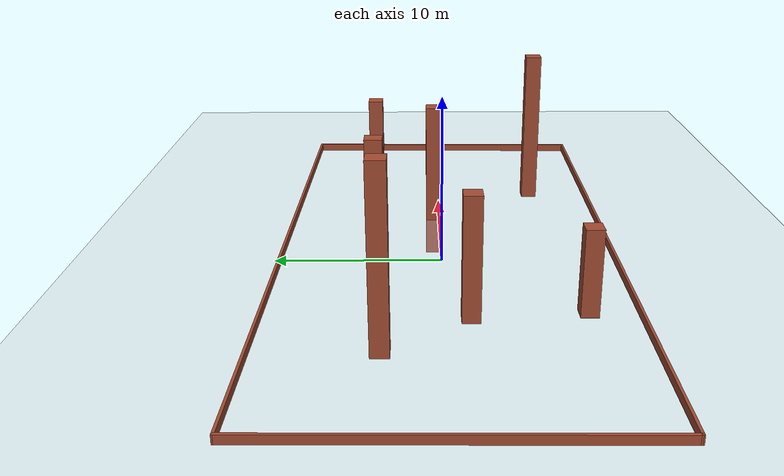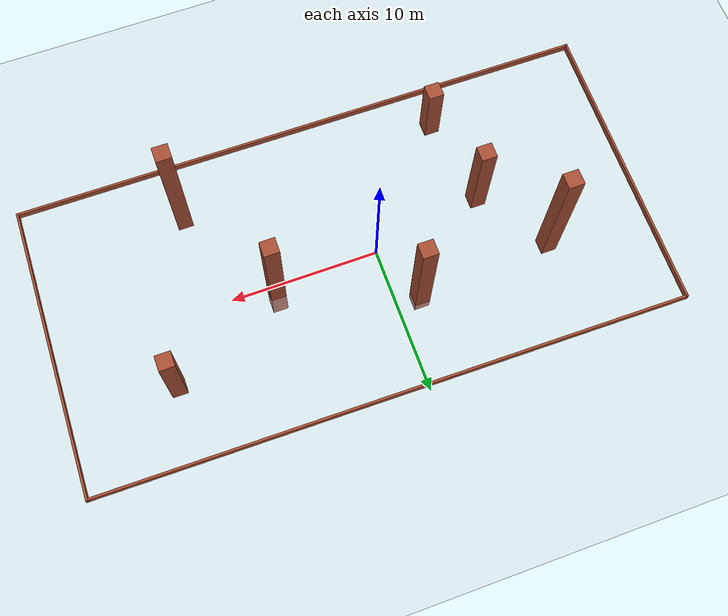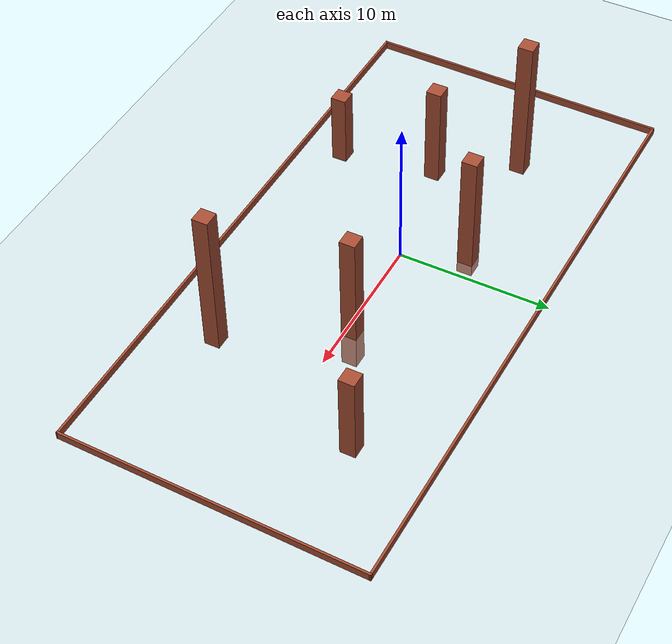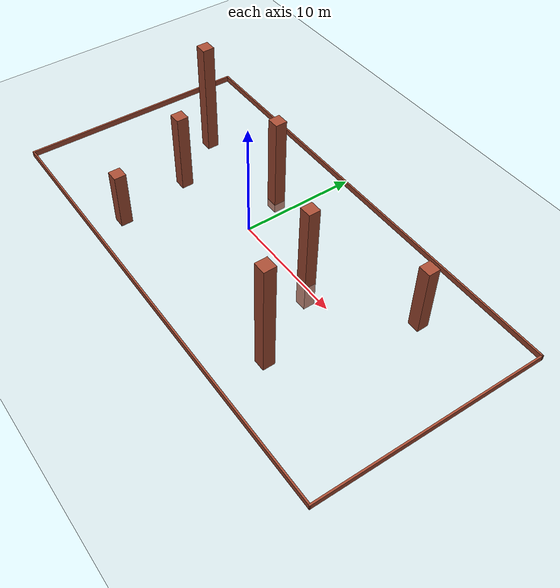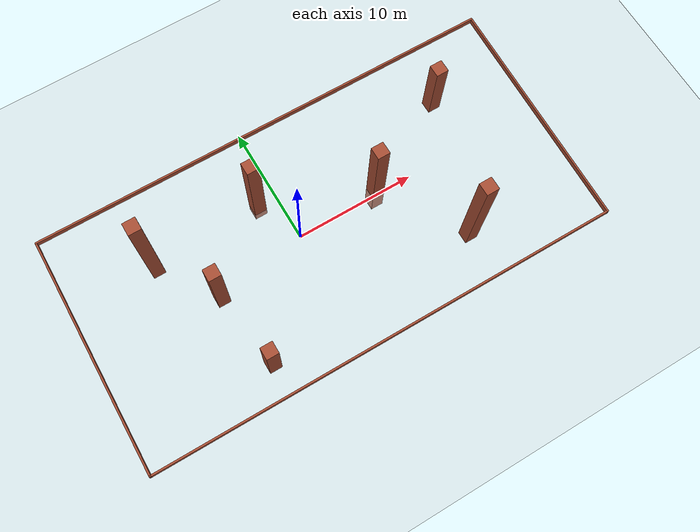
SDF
<sdf version="1.7">
 <world name="default">
  <light name="sun" type="directional">
   <pose>0 0 10 0 -0 0</pose>
   <diffuse>0.8 0.8 0.8 1</diffuse>
   <specular>0.1 0.1 0.1 1</specular>
   <attenuation>
    <range>1000</range>
    <constant>0.9</constant>
    <linear>0.01</linear>
    <quadratic>0.001</quadratic>
   </attenuation>
   <direction>-0.5 0.5 -1</direction>
   <spot><inner_angle>0</inner_angle><outer_angle>0</outer_angle><falloff>0</falloff></spot>
  </light>
  <model name="ground_plane">
   <static>1</static>
   <link name="link">
    <collision name="collision">
     <geometry><plane><normal>0 0 1</normal><size>100 100</size></plane></geometry>
     <surface><friction><ode><mu>100</mu><mu2>50</mu2></ode></friction></surface>
    </collision>
    <visual name="visual">
     <cast_shadows>0</cast_shadows>
     <geometry><plane><normal>0 0 1</normal><size>100 100</size></plane></geometry>
     <material>
      <script><uri>file://media/materials/scripts/gazebo.material</uri><name>Gazebo/Grey</name></script>
     </material>
    </visual>
   </link>
  </model>
  <gravity>0 0 -9.8</gravity>
  <magnetic_field>6e-06 2.3e-05 -4.2e-05</magnetic_field>
  <atmosphere type="adiabatic"/>
  <physics name="default_physics" default="0" type="ode">
   <max_step_size>0.001</max_step_size>
   <real_time_factor>1</real_time_factor>
   <real_time_update_rate>1000</real_time_update_rate>
  </physics>
  <scene><ambient>0.4 0.4 0.4 1</ambient><background>0.7 0.7 0.7 1</background><shadows>1</shadows></scene>
  <spherical_coordinates>
   <surface_model>EARTH_WGS84</surface_model>
   <latitude_deg>0</latitude_deg>
   <longitude_deg>0</longitude_deg>
   <elevation>0</elevation>
   <heading_deg>0</heading_deg>
  </spherical_coordinates>
  <audio><device>default</device></audio>
  <model name="Untitled">
   <pose>-10.5221 3.76724 0 0 -0 0</pose>
   <link name="Wall_0">
    <collision name="Wall_0_Collision">
     <geometry><box><size>1.01 1 9</size></box></geometry>
     <pose>0 0 5 0 -0 0</pose>
    </collision>
    <visual name="Wall_0_Visual">
     <pose>0 0 5 0 -0 0</pose>
     <geometry><box><size>1.01 1 10</size></box></geometry>
     <material>
      <script><uri>file://media/materials/scripts/gazebo.material</uri><name>Gazebo/Bricks</name></script>
      <ambient>1 1 1 1</ambient>
     </material>
     <meta><layer>0</layer></meta>
    </visual>
    <pose>-0.275 -0.51 0 0 -0 0</pose>
   </link>
   <static>1</static>
  </model>
  <model name="Untitled_clone">
   <pose>-7.3242 -0.82688 -1.38301 0 -0 0</pose>
   <link name="Wall_0">
    <collision name="Wall_0_Collision">
     <geometry><box><size>1.01 1 10</size></box></geometry>
     <pose>0 0 5 0 -0 0</pose>
    </collision>
    <visual name="Wall_0_Visual">
     <pose>0 0 5 0 -0 0</pose>
     <geometry><box><size>1.01 1 7</size></box></geometry>
     <material>
      <script><uri>file://media/materials/scripts/gazebo.material</uri><name>Gazebo/Bricks</name></script>
      <ambient>1 1 1 1</ambient>
     </material>
     <meta><layer>0</layer></meta>
    </visual>
    <pose>-0.275 -0.51 0 0 -0 0</pose>
   </link>
   <static>1</static>
  </model>
  <model name="Untitled_clone_1">
   <pose>-6.4547 -7.10206 -2.57276 0 -0 0</pose>
   <link name="Wall_0">
    <collision name="Wall_0_Collision">
     <geometry><box><size>1.01 1 10</size></box></geometry>
     <pose>0 0 5 0 -0 0</pose>
    </collision>
    <visual name="Wall_0_Visual">
     <pose>0 0 5 0 -0 0</pose>
     <geometry><box><size>1.01 1 5</size></box></geometry>
     <material>
      <script><uri>file://media/materials/scripts/gazebo.material</uri><name>Gazebo/Bricks</name></script>
      <ambient>1 1 1 1</ambient>
     </material>
     <meta><layer>0</layer></meta>
    </visual>
    <pose>-0.275 -0.51 0 0 -0 0</pose>
   </link>
   <static>1</static>
  </model>
  <model name="Untitled_clone_2">
   <pose>15.187 4.99069 -1.94891 0 -0 0</pose>
   <link name="Wall_0">
    <collision name="Wall_0_Collision">
     <geometry><box><size>1.01 1 8</size></box></geometry>
     <pose>0 0 5 0 -0 0</pose>
    </collision>
    <visual name="Wall_0_Visual">
     <pose>0 0 5 0 -0 0</pose>
     <geometry><box><size>1.01 1 6</size></box></geometry>
     <material>
      <script><uri>file://media/materials/scripts/gazebo.material</uri><name>Gazebo/Bricks</name></script>
      <ambient>1 1 1 1</ambient>
     </material>
     <meta><layer>0</layer></meta>
    </visual>
    <pose>-0.275 -0.51 0 0 -0 0</pose>
   </link>
   <static>1</static>
  </model>
  <model name="Untitled_clone_3">
   <pose>11.5749 -5.93521 0 0 -0 0</pose>
   <link name="Wall_0">
    <collision name="Wall_0_Collision">
     <geometry><box><size>1.01 1 12</size></box></geometry>
     <pose>0 0 5 0 -0 0</pose>
    </collision>
    <visual name="Wall_0_Visual">
     <pose>0 0 5 0 -0 0</pose>
     <geometry><box><size>1.01 1 10</size></box></geometry>
     <material>
      <script><uri>file://media/materials/scripts/gazebo.material</uri><name>Gazebo/Bricks</name></script>
      <ambient>1 1 1 1</ambient>
     </material>
     <meta><layer>0</layer></meta>
    </visual>
    <pose>-0.275 -0.51 0 0 -0 0</pose>
   </link>
   <static>1</static>
  </model>
  <model name="Untitled_clone_4">
   <pose>7.32395 0.888971 -2.39284 0 -0 0</pose>
   <link name="Wall_0">
    <collision name="Wall_0_Collision">
     <geometry><box><size>1.01 1 5</size></box></geometry>
     <pose>0 0 5 0 -0 0</pose>
    </collision>
    <visual name="Wall_0_Visual">
     <pose>0 0 5 0 -0 0</pose>
     <geometry><box><size>1.01 1 10</size></box></geometry>
     <material>
      <script><uri>file://media/materials/scripts/gazebo.material</uri><name>Gazebo/Bricks</name></script>
      <ambient>1 1 1 1</ambient>
     </material>
     <meta><layer>0</layer></meta>
    </visual>
    <pose>-0.275 -0.51 0 0 -0 0</pose>
   </link>
   <static>1</static>
  </model>
  <model name="Untitled_clone_5">
   <pose>-1.35905 4.35403 -1.34773 0 -0 0</pose>
   <link name="Wall_0">
    <collision name="Wall_0_Collision">
     <geometry><box><size>1.01 1 7</size></box></geometry>
     <pose>0 0 5 0 -0 0</pose>
    </collision>
    <visual name="Wall_0_Visual">
     <pose>0 0 5 0 -0 0</pose>
     <geometry><box><size>1.01 1 9</size></box></geometry>
     <material>
      <script><uri>file://media/materials/scripts/gazebo.material</uri><name>Gazebo/Bricks</name></script>
      <ambient>1 1 1 1</ambient>
     </material>
     <meta><layer>0</layer></meta>
    </visual>
    <pose>-0.275 -0.51 0 0 -0 0</pose>
   </link>
   <static>1</static>
  </model>
  <model name="Untitled_1">
   <pose>1.88811 -0.414439 0 0 0 -0.02235</pose>
   <link name="Wall_10">
    <collision name="Wall_10_Collision">
     <geometry><box><size>20.1506 0.15 0.5</size></box></geometry>
     <pose>0 0 0.25 0 -0 0</pose>
    </collision>
    <visual name="Wall_10_Visual">
     <pose>0 0 0.25 0 -0 0</pose>
     <geometry><box><size>20.1506 0.15 0.5</size></box></geometry>
     <material>
      <script><uri>file://media/materials/scripts/gazebo.material</uri><name>Gazebo/Bricks</name></script>
      <ambient>1 1 1 1</ambient>
     </material>
     <meta><layer>0</layer></meta>
    </visual>
    <pose>-19.9251 -0.24986 0 0 -0 1.5783</pose>
   </link>
   <link name="Wall_3">
    <collision name="Wall_3_Collision">
     <geometry><box><size>40.1531 0.15 0.5</size></box></geometry>
     <pose>0 0 0.25 0 -0 0</pose>
    </collision>
    <visual name="Wall_3_Visual">
     <pose>0 0 0.25 0 -0 0</pose>
     <geometry><box><size>40.1531 0.15 0.5</size></box></geometry>
     <material>
      <script><uri>file://media/materials/scripts/gazebo.material</uri><name>Gazebo/Bricks</name></script>
      <ambient>1 1 1 1</ambient>
     </material>
     <meta><layer>0</layer></meta>
    </visual>
    <pose>-0.000142 10.0001 0 0 -0 0.012499</pose>
   </link>
   <link name="Wall_8">
    <collision name="Wall_8_Collision">
     <geometry><box><size>20 0.15 0.5</size></box></geometry>
     <pose>0 0 0.25 0 -0 0</pose>
    </collision>
    <visual name="Wall_8_Visual">
     <pose>0 0 0.25 0 -0 0</pose>
     <geometry><box><size>20 0.15 0.5</size></box></geometry>
     <material>
      <script><uri>file://media/materials/scripts/gazebo.material</uri><name>Gazebo/Bricks</name></script>
      <ambient>1 1 1 1</ambient>
     </material>
     <meta><layer>0</layer></meta>
    </visual>
    <pose>19.9999 0.32514 0 0 -0 -1.5708</pose>
   </link>
   <link name="Wall_9">
    <collision name="Wall_9_Collision">
     <geometry><box><size>40.0053 0.15 0.5</size></box></geometry>
     <pose>0 0 0.25 0 -0 0</pose>
    </collision>
    <visual name="Wall_9_Visual">
     <pose>0 0 0.25 0 -0 0</pose>
     <geometry><box><size>40.0053 0.15 0.5</size></box></geometry>
     <material>
      <script><uri>file://media/materials/scripts/gazebo.material</uri><name>Gazebo/Bricks</name></script>
      <ambient>1 1 1 1</ambient>
     </material>
     <meta><layer>0</layer></meta>
    </visual>
    <pose>0.074858 -9.92486 0 0 -0 -3.12528</pose>
   </link>
   <static>1</static>
  </model>
 </world>
</sdf>
